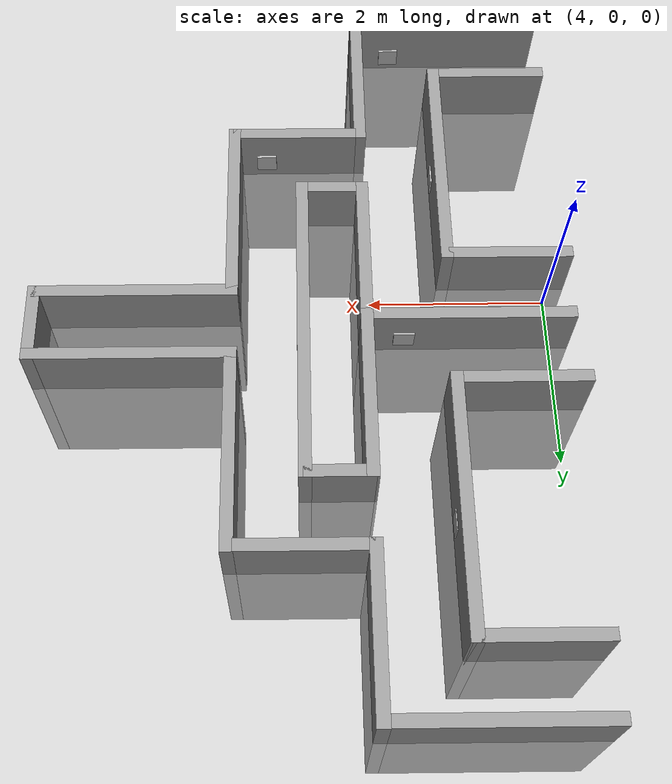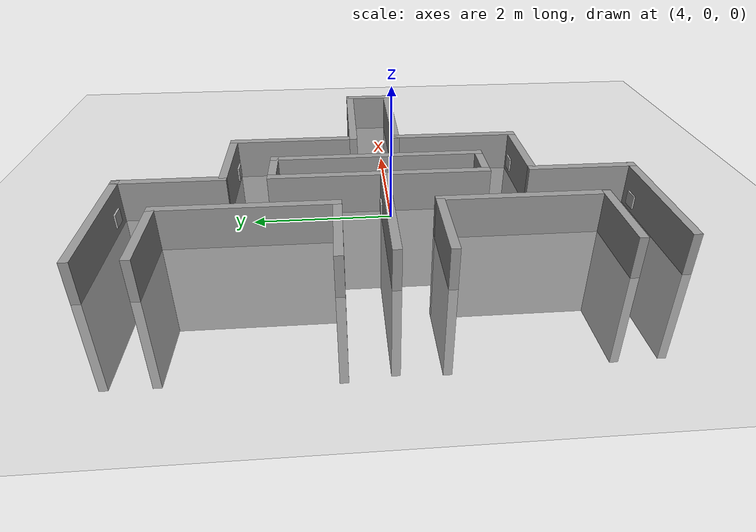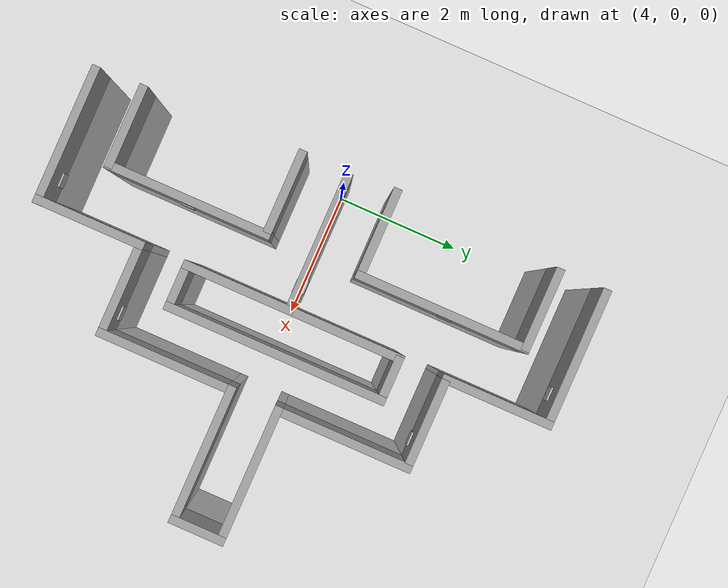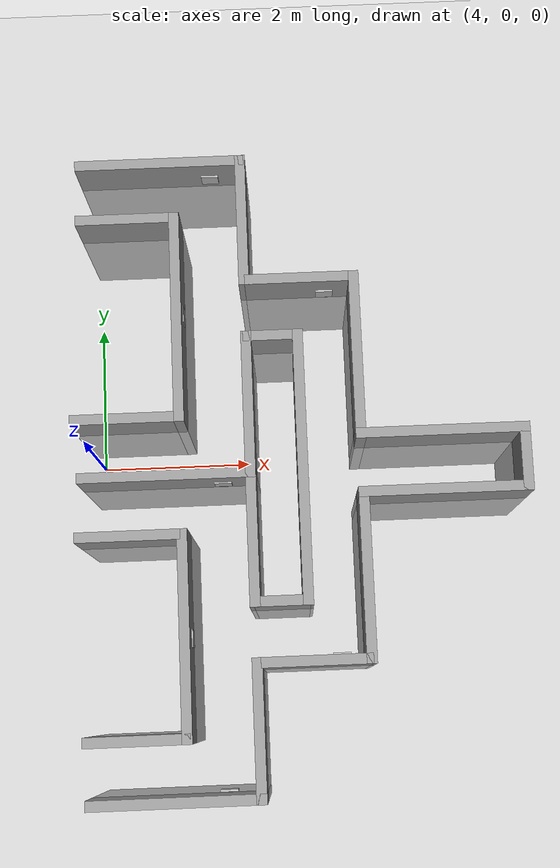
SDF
<sdf version="1.7">
 <world name="default">
  <physics name="default_physics" default="0" type="ode">
   <max_step_size>0.001</max_step_size>
   <real_time_factor>1</real_time_factor>
   <real_time_update_rate>1000</real_time_update_rate>
  </physics>
  <scene><ambient>0.7 0.7 0.7 1</ambient><background>0.7 0.7 0.7 1</background><shadows>1</shadows></scene>
  <light name="sun" type="directional">
   <pose>0 0 10 0 -0 0</pose>
   <diffuse>0.8 0.8 0.8 1</diffuse>
   <specular>0.1 0.1 0.1 1</specular>
   <attenuation>
    <range>1000</range>
    <constant>0.9</constant>
    <linear>0.01</linear>
    <quadratic>0.001</quadratic>
   </attenuation>
   <direction>-0.5 0.5 -1</direction>
   <spot><inner_angle>0</inner_angle><outer_angle>0</outer_angle><falloff>0</falloff></spot>
  </light>
  <model name="ground_plane">
   <static>1</static>
   <link name="link">
    <collision name="collision">
     <geometry><plane><normal>0 0 1</normal><size>100 100</size></plane></geometry>
     <surface>
      <contact><collide_bitmask>65535</collide_bitmask></contact>
      <friction><ode><mu>100</mu><mu2>50</mu2></ode></friction>
     </surface>
    </collision>
    <visual name="visual">
     <cast_shadows>0</cast_shadows>
     <geometry><plane><normal>0 0 1</normal><size>100 100</size></plane></geometry>
     <material>
      <script><uri>file://media/materials/scripts/gazebo.material</uri><name>Gazebo/Grey</name></script>
     </material>
    </visual>
   </link>
   <pose>0 0 -1 0 -0 0</pose>
  </model>
  <gravity>0 0 -9.8</gravity>
  <magnetic_field>6e-06 2.3e-05 -4.2e-05</magnetic_field>
  <atmosphere type="adiabatic"/>
  <spherical_coordinates>
   <surface_model>EARTH_WGS84</surface_model>
   <latitude_deg>0</latitude_deg>
   <longitude_deg>0</longitude_deg>
   <elevation>0</elevation>
   <heading_deg>0</heading_deg>
  </spherical_coordinates>
  <model name="tag_3">
   <static>1</static>
   <link name="link">
    <collision name="surface">
     <pose>0 0 1 0 -0 0</pose>
     <geometry><box><size>0.25 0.25 0.03</size></box></geometry>
     <surface><friction><ode><mu>0.6</mu><mu2>0.6</mu2></ode></friction></surface>
    </collision>
    <visual name="visual1">
     <pose>0 0 1 0 -0 0</pose>
     <geometry><box><size>0.25 0.25 0.03</size></box></geometry>
     <material>
      <script>
       <uri>model://miro_tag3/materials/scripts</uri>
       <uri>model://miro_tag3/materials/textures</uri>
       <name>miro_tag3/Diffuse</name>
      </script>
     </material>
    </visual>
   </link>
   <pose>5.55171 -5.48961 -0.762826 -1.56319 -1.5636 -0</pose>
  </model>
  <model name="tag_4">
   <static>1</static>
   <link name="link">
    <collision name="surface">
     <pose>0 0 1 0 -0 0</pose>
     <geometry><box><size>0.25 0.25 0.03</size></box></geometry>
     <surface><friction><ode><mu>0.6</mu><mu2>0.6</mu2></ode></friction></surface>
    </collision>
    <visual name="visual1">
     <pose>0 0 1 0 -0 0</pose>
     <geometry><box><size>0.25 0.25 0.03</size></box></geometry>
     <material>
      <script>
       <uri>model://miro_tag4/materials/scripts</uri>
       <uri>model://miro_tag4/materials/textures</uri>
       <name>miro_tag4/Diffuse</name>
      </script>
     </material>
    </visual>
   </link>
   <pose>5.5885 0.864964 -0.735792 -1.56815 -1.56181 -3.14159</pose>
  </model>
  <model name="tag_5">
   <static>1</static>
   <link name="link">
    <collision name="surface">
     <pose>0 0 1 0 -0 0</pose>
     <geometry><box><size>0.25 0.25 0.03</size></box></geometry>
     <surface><friction><ode><mu>0.6</mu><mu2>0.6</mu2></ode></friction></surface>
    </collision>
    <visual name="visual1">
     <pose>0 0 1 0 -0 0</pose>
     <geometry><box><size>0.25 0.25 0.03</size></box></geometry>
     <material>
      <script>
       <uri>model://miro_tag5/materials/scripts</uri>
       <uri>model://miro_tag5/materials/textures</uri>
       <name>miro_tag5/Diffuse</name>
      </script>
     </material>
    </visual>
   </link>
   <pose>5.54906 -0.966563 -0.730181 1.57542 -1.56424 3.14159</pose>
  </model>
  <model name="tag_6">
   <static>1</static>
   <link name="link">
    <collision name="surface">
     <pose>0 0 1 0 -0 0</pose>
     <geometry><box><size>0.25 0.25 0.03</size></box></geometry>
     <surface><friction><ode><mu>0.6</mu><mu2>0.6</mu2></ode></friction></surface>
    </collision>
    <visual name="visual1">
     <pose>0 0 1 0 -0 0</pose>
     <geometry><box><size>0.25 0.25 0.03</size></box></geometry>
     <material>
      <script>
       <uri>model://miro_tag6/materials/scripts</uri>
       <uri>model://miro_tag6/materials/textures</uri>
       <name>miro_tag6/Diffuse</name>
      </script>
     </material>
    </visual>
   </link>
   <pose>5.54805 5.54378 -0.721584 -1.58619 -1.55454 -3.14159</pose>
  </model>
  <model name="tag_8">
   <static>1</static>
   <link name="link">
    <collision name="surface">
     <pose>0 0 1 0 -0 0</pose>
     <geometry><box><size>0.25 0.25 0.03</size></box></geometry>
     <surface><friction><ode><mu>0.6</mu><mu2>0.6</mu2></ode></friction></surface>
    </collision>
    <visual name="visual1">
     <pose>0 0 1 0 -0 0</pose>
     <geometry><box><size>0.25 0.25 0.03</size></box></geometry>
     <material>
      <script>
       <uri>model://miro_tag/materials/scripts</uri>
       <uri>model://miro_tag/materials/textures</uri>
       <name>miro_tag/Diffuse</name>
      </script>
     </material>
    </visual>
   </link>
   <pose>6.08147 -2.35807 -0.744878 -1.16296 1.56828 1.97863</pose>
  </model>
  <model name="tag">
   <static>1</static>
   <link name="link">
    <collision name="surface">
     <pose>0 0 1 0 -0 0</pose>
     <geometry><box><size>0.25 0.25 0.03</size></box></geometry>
     <surface><friction><ode><mu>0.6</mu><mu2>0.6</mu2></ode></friction></surface>
    </collision>
    <visual name="visual1">
     <pose>0 0 1 0 -0 0</pose>
     <geometry><box><size>0.25 0.25 0.03</size></box></geometry>
     <material>
      <script>
       <uri>model://miro_tag/materials/scripts</uri>
       <uri>model://miro_tag/materials/textures</uri>
       <name>miro_tag/Diffuse</name>
      </script>
     </material>
    </visual>
   </link>
   <pose>6.07558 2.40703 -0.703912 -3.10652 1.55258 0.035081</pose>
  </model>
  <model name="tag_0">
   <static>1</static>
   <link name="link">
    <collision name="surface">
     <pose>0 0 1 0 -0 0</pose>
     <geometry><box><size>0.25 0.25 0.03</size></box></geometry>
     <surface><friction><ode><mu>0.6</mu><mu2>0.6</mu2></ode></friction></surface>
    </collision>
    <visual name="visual1">
     <pose>0 0 1 0 -0 0</pose>
     <geometry><box><size>0.25 0.25 0.03</size></box></geometry>
     <material>
      <script>
       <uri>model://miro_tag/materials/scripts</uri>
       <uri>model://miro_tag/materials/textures</uri>
       <name>miro_tag/Diffuse</name>
      </script>
     </material>
    </visual>
   </link>
   <pose>7.81471 0.010888 -0.759206 -0.527055 1.5524 2.61446</pose>
  </model>
  <model name="tag_1">
   <static>1</static>
   <link name="link">
    <collision name="surface">
     <pose>0 0 1 0 -0 0</pose>
     <geometry><box><size>0.25 0.25 0.03</size></box></geometry>
     <surface><friction><ode><mu>0.6</mu><mu2>0.6</mu2></ode></friction></surface>
    </collision>
    <visual name="visual1">
     <pose>0 0 1 0 -0 0</pose>
     <geometry><box><size>0.25 0.25 0.03</size></box></geometry>
     <material>
      <script>
       <uri>model://miro_tag1/materials/scripts</uri>
       <uri>model://miro_tag1/materials/textures</uri>
       <name>miro_tag1/Diffuse</name>
      </script>
     </material>
    </visual>
   </link>
   <pose>7.20562 -3.65935 -0.746311 0.004771 -1.57079 -1.57369</pose>
  </model>
  <model name="tag_2">
   <static>1</static>
   <link name="link">
    <collision name="surface">
     <pose>0 0 1 0 -0 0</pose>
     <geometry><box><size>0.25 0.25 0.03</size></box></geometry>
     <surface><friction><ode><mu>0.6</mu><mu2>0.6</mu2></ode></friction></surface>
    </collision>
    <visual name="visual1">
     <pose>0 0 1 0 -0 0</pose>
     <geometry><box><size>0.25 0.25 0.03</size></box></geometry>
     <material>
      <script>
       <uri>model://miro_tag2/materials/scripts</uri>
       <uri>model://miro_tag2/materials/textures</uri>
       <name>miro_tag2/Diffuse</name>
      </script>
     </material>
    </visual>
   </link>
   <pose>7.18133 3.68906 -0.741205 -1e-06 -1.56717 1.56483</pose>
  </model>
  <model name="maze2.0_0">
   <link name="Wall_101">
    <pose>0.75 0 0 0 -0 1.5708</pose>
    <visual name="Wall_101_Visual">
     <pose>0 0 1.25 0 -0 0</pose>
     <geometry><box><size>4 0.15 2.5</size></box></geometry>
     <material>
      <script><uri>file://media/materials/scripts/gazebo.material</uri><name>Gazebo/Grey</name></script>
      <ambient>1 1 1 1</ambient>
      <shader type="pixel"/>
     </material>
     <meta><layer>0</layer></meta>
    </visual>
    <collision name="Wall_101_Collision">
     <pose>0 0 1.25 0 -0 0</pose>
     <geometry><box><size>4 0.15 2.5</size></box></geometry>
     <surface>
      <friction>
       <ode><mu>1</mu><mu2>1</mu2><fdir1>0 0 0</fdir1><slip1>0</slip1><slip2>0</slip2></ode>
       <torsional>
        <coefficient>1</coefficient>
        <patch_radius>0</patch_radius>
        <surface_radius>0</surface_radius>
        <use_patch_radius>1</use_patch_radius>
        <ode><slip>0</slip></ode>
       </torsional>
      </friction>
      <bounce><restitution_coefficient>0</restitution_coefficient><threshold>1e+06</threshold></bounce>
      <contact>
       <collide_without_contact>0</collide_without_contact>
       <collide_without_contact_bitmask>1</collide_without_contact_bitmask>
       <collide_bitmask>1</collide_bitmask>
       <ode>
        <soft_cfm>0</soft_cfm>
        <soft_erp>0.2</soft_erp>
        <kp>1e+13</kp>
        <kd>1</kd>
        <max_vel>0.01</max_vel>
        <min_depth>0</min_depth>
       </ode>
       <bullet>
        <split_impulse>1</split_impulse>
        <split_impulse_penetration_threshold>-0.01</split_impulse_penetration_threshold>
        <soft_cfm>0</soft_cfm>
        <soft_erp>0.2</soft_erp>
        <kp>1e+13</kp>
        <kd>1</kd>
       </bullet>
      </contact>
     </surface>
    </collision>
   </link>
   <link name="Wall_105">
    <pose>0.774711 2.77479 0 0 -0 0</pose>
    <inertial>
     <inertia><ixx>0</ixx><ixy>0</ixy><ixz>0</ixz><iyy>0</iyy><iyz>0</iyz><izz>0</izz></inertia>
     <mass>0</mass>
    </inertial>
    <visual name="Wall_105_Visual">
     <pose>0 0 1.25 0 -0 0</pose>
     <geometry><box><size>1.53068 0.15 2.5</size></box></geometry>
     <material>
      <script><uri>file://media/materials/scripts/gazebo.material</uri><name>Gazebo/Grey</name></script>
      <ambient>1 1 1 1</ambient>
      <shader type="pixel"/>
     </material>
     <meta><layer>0</layer></meta>
    </visual>
    <collision name="Wall_105_Collision">
     <pose>0 0 1.25 0 -0 0</pose>
     <geometry><box><size>1.53068 0.15 2.5</size></box></geometry>
     <surface>
      <friction>
       <ode><mu>1</mu><mu2>1</mu2><fdir1>0 0 0</fdir1><slip1>0</slip1><slip2>0</slip2></ode>
       <torsional>
        <coefficient>1</coefficient>
        <patch_radius>0</patch_radius>
        <surface_radius>0</surface_radius>
        <use_patch_radius>1</use_patch_radius>
        <ode><slip>0</slip></ode>
       </torsional>
      </friction>
      <bounce><restitution_coefficient>0</restitution_coefficient><threshold>1e+06</threshold></bounce>
      <contact>
       <collide_without_contact>0</collide_without_contact>
       <collide_without_contact_bitmask>1</collide_without_contact_bitmask>
       <collide_bitmask>1</collide_bitmask>
       <ode>
        <soft_cfm>0</soft_cfm>
        <soft_erp>0.2</soft_erp>
        <kp>1e+13</kp>
        <kd>1</kd>
        <max_vel>0.01</max_vel>
        <min_depth>0</min_depth>
       </ode>
       <bullet>
        <split_impulse>1</split_impulse>
        <split_impulse_penetration_threshold>-0.01</split_impulse_penetration_threshold>
        <soft_cfm>0</soft_cfm>
        <soft_erp>0.2</soft_erp>
        <kp>1e+13</kp>
        <kd>1</kd>
       </bullet>
      </contact>
     </surface>
    </collision>
   </link>
   <link name="Wall_108">
    <pose>0 -3.7 0 0 0 -1.5708</pose>
    <inertial>
     <mass>1</mass>
     <inertia><ixx>1</ixx><ixy>0</ixy><ixz>0</ixz><iyy>1</iyy><iyz>0</iyz><izz>1</izz></inertia>
    </inertial>
    <visual name="Wall_108_Visual">
     <pose>0 0 1.25 0 -0 0</pose>
     <geometry><box><size>2 0.15 2.5</size></box></geometry>
     <material>
      <script><uri>file://media/materials/scripts/gazebo.material</uri><name>Gazebo/Grey</name></script>
      <ambient>1 1 1 1</ambient>
      <shader type="pixel"><normal_map>__default__</normal_map></shader>
      <diffuse>0.7 0.7 0.7 1</diffuse>
      <specular>0.01 0.01 0.01 1</specular>
      <emissive>0 0 0 1</emissive>
     </material>
     <meta><layer>0</layer></meta>
    </visual>
    <collision name="Wall_108_Collision">
     <pose>0 0 1.25 0 -0 0</pose>
     <geometry><box><size>2 0.15 2.5</size></box></geometry>
     <surface>
      <friction>
       <ode><mu>1</mu><mu2>1</mu2><fdir1>0 0 0</fdir1><slip1>0</slip1><slip2>0</slip2></ode>
       <torsional>
        <coefficient>1</coefficient>
        <patch_radius>0</patch_radius>
        <surface_radius>0</surface_radius>
        <use_patch_radius>1</use_patch_radius>
        <ode><slip>0</slip></ode>
       </torsional>
      </friction>
      <bounce><restitution_coefficient>0</restitution_coefficient><threshold>1e+06</threshold></bounce>
      <contact>
       <collide_without_contact>0</collide_without_contact>
       <collide_without_contact_bitmask>1</collide_without_contact_bitmask>
       <collide_bitmask>1</collide_bitmask>
       <ode>
        <soft_cfm>0</soft_cfm>
        <soft_erp>0.2</soft_erp>
        <kp>1e+13</kp>
        <kd>1</kd>
        <max_vel>0.01</max_vel>
        <min_depth>0</min_depth>
       </ode>
       <bullet>
        <split_impulse>1</split_impulse>
        <split_impulse_penetration_threshold>-0.01</split_impulse_penetration_threshold>
        <soft_cfm>0</soft_cfm>
        <soft_erp>0.2</soft_erp>
        <kp>1e+13</kp>
        <kd>1</kd>
       </bullet>
      </contact>
     </surface>
    </collision>
   </link>
   <link name="Wall_109">
    <pose>-1.17194 -4.625 0 0 -0 3.14159</pose>
    <inertial>
     <mass>1</mass>
     <inertia><ixx>1</ixx><ixy>0</ixy><ixz>0</ixz><iyy>1</iyy><iyz>0</iyz><izz>1</izz></inertia>
    </inertial>
    <visual name="Wall_109_Visual">
     <pose>0 0 1.25 0 -0 0</pose>
     <geometry><box><size>2.5 0.15 2.5</size></box></geometry>
     <material>
      <script><uri>file://media/materials/scripts/gazebo.material</uri><name>Gazebo/Grey</name></script>
      <ambient>1 1 1 1</ambient>
      <shader type="pixel"><normal_map>__default__</normal_map></shader>
      <diffuse>0.7 0.7 0.7 1</diffuse>
      <specular>0.01 0.01 0.01 1</specular>
      <emissive>0 0 0 1</emissive>
     </material>
     <meta><layer>0</layer></meta>
    </visual>
    <collision name="Wall_109_Collision">
     <pose>0 0 1.25 0 -0 0</pose>
     <geometry><box><size>2.5 0.15 2.5</size></box></geometry>
     <surface>
      <friction>
       <ode><mu>1</mu><mu2>1</mu2><fdir1>0 0 0</fdir1><slip1>0</slip1><slip2>0</slip2></ode>
       <torsional>
        <coefficient>1</coefficient>
        <patch_radius>0</patch_radius>
        <surface_radius>0</surface_radius>
        <use_patch_radius>1</use_patch_radius>
        <ode><slip>0</slip></ode>
       </torsional>
      </friction>
      <bounce><restitution_coefficient>0</restitution_coefficient><threshold>1e+06</threshold></bounce>
      <contact>
       <collide_without_contact>0</collide_without_contact>
       <collide_without_contact_bitmask>1</collide_without_contact_bitmask>
       <collide_bitmask>1</collide_bitmask>
       <ode>
        <soft_cfm>0</soft_cfm>
        <soft_erp>0.2</soft_erp>
        <kp>1e+13</kp>
        <kd>1</kd>
        <max_vel>0.01</max_vel>
        <min_depth>0</min_depth>
       </ode>
       <bullet>
        <split_impulse>1</split_impulse>
        <split_impulse_penetration_threshold>-0.01</split_impulse_penetration_threshold>
        <soft_cfm>0</soft_cfm>
        <soft_erp>0.2</soft_erp>
        <kp>1e+13</kp>
        <kd>1</kd>
       </bullet>
      </contact>
     </surface>
    </collision>
   </link>
   <link name="Wall_111">
    <pose>0 3.7011 0 0 -0 1.5708</pose>
    <inertial>
     <mass>1</mass>
     <inertia><ixx>1</ixx><ixy>0</ixy><ixz>0</ixz><iyy>1</iyy><iyz>0</iyz><izz>1</izz></inertia>
    </inertial>
    <visual name="Wall_111_Visual">
     <pose>0 0 1.25 0 -0 0</pose>
     <geometry><box><size>2 0.15 2.5</size></box></geometry>
     <material>
      <script><uri>file://media/materials/scripts/gazebo.material</uri><name>Gazebo/Grey</name></script>
      <ambient>1 1 1 1</ambient>
      <shader type="pixel"><normal_map>__default__</normal_map></shader>
      <diffuse>0.7 0.7 0.7 1</diffuse>
      <specular>0.01 0.01 0.01 1</specular>
      <emissive>0 0 0 1</emissive>
     </material>
     <meta><layer>0</layer></meta>
    </visual>
    <collision name="Wall_111_Collision">
     <pose>0 0 1.25 0 -0 0</pose>
     <geometry><box><size>2 0.15 2.5</size></box></geometry>
     <surface>
      <friction>
       <ode><mu>1</mu><mu2>1</mu2><fdir1>0 0 0</fdir1><slip1>0</slip1><slip2>0</slip2></ode>
       <torsional>
        <coefficient>1</coefficient>
        <patch_radius>0</patch_radius>
        <surface_radius>0</surface_radius>
        <use_patch_radius>1</use_patch_radius>
        <ode><slip>0</slip></ode>
       </torsional>
      </friction>
      <bounce><restitution_coefficient>0</restitution_coefficient><threshold>1e+06</threshold></bounce>
      <contact>
       <collide_without_contact>0</collide_without_contact>
       <collide_without_contact_bitmask>1</collide_without_contact_bitmask>
       <collide_bitmask>1</collide_bitmask>
       <ode>
        <soft_cfm>0</soft_cfm>
        <soft_erp>0.2</soft_erp>
        <kp>1e+13</kp>
        <kd>1</kd>
        <max_vel>0.01</max_vel>
        <min_depth>0</min_depth>
       </ode>
       <bullet>
        <split_impulse>1</split_impulse>
        <split_impulse_penetration_threshold>-0.01</split_impulse_penetration_threshold>
        <soft_cfm>0</soft_cfm>
        <soft_erp>0.2</soft_erp>
        <kp>1e+13</kp>
        <kd>1</kd>
       </bullet>
      </contact>
     </surface>
    </collision>
   </link>
   <link name="Wall_112">
    <pose>-1.1964 4.625 0 0 -0 3.14159</pose>
    <visual name="Wall_112_Visual">
     <pose>0 0 1.25 0 -0 0</pose>
     <geometry><box><size>2.5 0.15 2.5</size></box></geometry>
     <material>
      <script><uri>file://media/materials/scripts/gazebo.material</uri><name>Gazebo/Grey</name></script>
      <ambient>1 1 1 1</ambient>
      <shader type="pixel"/>
     </material>
     <meta><layer>0</layer></meta>
    </visual>
    <collision name="Wall_112_Collision">
     <pose>0 0 1.25 0 -0 0</pose>
     <geometry><box><size>2.5 0.15 2.5</size></box></geometry>
     <surface>
      <friction>
       <ode><mu>1</mu><mu2>1</mu2><fdir1>0 0 0</fdir1><slip1>0</slip1><slip2>0</slip2></ode>
       <torsional>
        <coefficient>1</coefficient>
        <patch_radius>0</patch_radius>
        <surface_radius>0</surface_radius>
        <use_patch_radius>1</use_patch_radius>
        <ode><slip>0</slip></ode>
       </torsional>
      </friction>
      <bounce><restitution_coefficient>0</restitution_coefficient><threshold>1e+06</threshold></bounce>
      <contact>
       <collide_without_contact>0</collide_without_contact>
       <collide_without_contact_bitmask>1</collide_without_contact_bitmask>
       <collide_bitmask>1</collide_bitmask>
       <ode>
        <soft_cfm>0</soft_cfm>
        <soft_erp>0.2</soft_erp>
        <kp>1e+13</kp>
        <kd>1</kd>
        <max_vel>0.01</max_vel>
        <min_depth>0</min_depth>
       </ode>
       <bullet>
        <split_impulse>1</split_impulse>
        <split_impulse_penetration_threshold>-0.01</split_impulse_penetration_threshold>
        <soft_cfm>0</soft_cfm>
        <soft_erp>0.2</soft_erp>
        <kp>1e+13</kp>
        <kd>1</kd>
       </bullet>
      </contact>
     </surface>
    </collision>
   </link>
   <link name="Wall_115">
    <pose>-1.7 -3.775 0 0 -0 0</pose>
    <inertial>
     <mass>1</mass>
     <inertia><ixx>1</ixx><ixy>0</ixy><ixz>0</ixz><iyy>1</iyy><iyz>0</iyz><izz>1</izz></inertia>
    </inertial>
    <visual name="Wall_115_Visual">
     <pose>0 0 1.25 0 -0 0</pose>
     <geometry><box><size>1.5 0.15 2.5</size></box></geometry>
     <material>
      <script><uri>file://media/materials/scripts/gazebo.material</uri><name>Gazebo/Grey</name></script>
      <ambient>1 1 1 1</ambient>
      <shader type="pixel"><normal_map>__default__</normal_map></shader>
      <diffuse>0.7 0.7 0.7 1</diffuse>
      <specular>0.01 0.01 0.01 1</specular>
      <emissive>0 0 0 1</emissive>
     </material>
     <meta><layer>0</layer></meta>
    </visual>
    <collision name="Wall_115_Collision">
     <pose>0 0 1.25 0 -0 0</pose>
     <geometry><box><size>1.5 0.15 2.5</size></box></geometry>
     <surface>
      <friction>
       <ode><mu>1</mu><mu2>1</mu2><fdir1>0 0 0</fdir1><slip1>0</slip1><slip2>0</slip2></ode>
       <torsional>
        <coefficient>1</coefficient>
        <patch_radius>0</patch_radius>
        <surface_radius>0</surface_radius>
        <use_patch_radius>1</use_patch_radius>
        <ode><slip>0</slip></ode>
       </torsional>
      </friction>
      <bounce><restitution_coefficient>0</restitution_coefficient><threshold>1e+06</threshold></bounce>
      <contact>
       <collide_without_contact>0</collide_without_contact>
       <collide_without_contact_bitmask>1</collide_without_contact_bitmask>
       <collide_bitmask>1</collide_bitmask>
       <ode>
        <soft_cfm>0</soft_cfm>
        <soft_erp>0.2</soft_erp>
        <kp>1e+13</kp>
        <kd>1</kd>
        <max_vel>0.01</max_vel>
        <min_depth>0</min_depth>
       </ode>
       <bullet>
        <split_impulse>1</split_impulse>
        <split_impulse_penetration_threshold>-0.01</split_impulse_penetration_threshold>
        <soft_cfm>0</soft_cfm>
        <soft_erp>0.2</soft_erp>
        <kp>1e+13</kp>
        <kd>1</kd>
       </bullet>
      </contact>
     </surface>
    </collision>
   </link>
   <link name="Wall_119">
    <pose>-1.77392 -0.925 0 0 -0 0</pose>
    <visual name="Wall_119_Visual">
     <pose>0 0 1.25 0 -0 0</pose>
     <geometry><box><size>1.5 0.15 2.5</size></box></geometry>
     <material>
      <script><uri>file://media/materials/scripts/gazebo.material</uri><name>Gazebo/Grey</name></script>
      <ambient>1 1 1 1</ambient>
      <shader type="pixel"/>
     </material>
     <meta><layer>0</layer></meta>
    </visual>
    <collision name="Wall_119_Collision">
     <pose>0 0 1.25 0 -0 0</pose>
     <geometry><box><size>1.5 0.15 2.5</size></box></geometry>
     <surface>
      <friction>
       <ode><mu>1</mu><mu2>1</mu2><fdir1>0 0 0</fdir1><slip1>0</slip1><slip2>0</slip2></ode>
       <torsional>
        <coefficient>1</coefficient>
        <patch_radius>0</patch_radius>
        <surface_radius>0</surface_radius>
        <use_patch_radius>1</use_patch_radius>
        <ode><slip>0</slip></ode>
       </torsional>
      </friction>
      <bounce><restitution_coefficient>0</restitution_coefficient><threshold>1e+06</threshold></bounce>
      <contact>
       <collide_without_contact>0</collide_without_contact>
       <collide_without_contact_bitmask>1</collide_without_contact_bitmask>
       <collide_bitmask>1</collide_bitmask>
       <ode>
        <soft_cfm>0</soft_cfm>
        <soft_erp>0.2</soft_erp>
        <kp>1e+13</kp>
        <kd>1</kd>
        <max_vel>0.01</max_vel>
        <min_depth>0</min_depth>
       </ode>
       <bullet>
        <split_impulse>1</split_impulse>
        <split_impulse_penetration_threshold>-0.01</split_impulse_penetration_threshold>
        <soft_cfm>0</soft_cfm>
        <soft_erp>0.2</soft_erp>
        <kp>1e+13</kp>
        <kd>1</kd>
       </bullet>
      </contact>
     </surface>
    </collision>
   </link>
   <link name="Wall_120">
    <pose>-1 -2.35 0 0 0 -1.5708</pose>
    <inertial>
     <mass>1</mass>
     <inertia><ixx>1</ixx><ixy>0</ixy><ixz>0</ixz><iyy>1</iyy><iyz>0</iyz><izz>1</izz></inertia>
    </inertial>
    <visual name="Wall_120_Visual">
     <pose>0 0 1.25 0 -0 0</pose>
     <geometry><box><size>3 0.15 2.5</size></box></geometry>
     <material>
      <script><uri>file://media/materials/scripts/gazebo.material</uri><name>Gazebo/Grey</name></script>
      <ambient>1 1 1 1</ambient>
      <shader type="pixel"><normal_map>__default__</normal_map></shader>
      <diffuse>0.7 0.7 0.7 1</diffuse>
      <specular>0.01 0.01 0.01 1</specular>
      <emissive>0 0 0 1</emissive>
     </material>
     <meta><layer>0</layer></meta>
    </visual>
    <collision name="Wall_120_Collision">
     <pose>0 0 1.25 0 -0 0</pose>
     <geometry><box><size>3 0.15 2.5</size></box></geometry>
     <surface>
      <friction>
       <ode><mu>1</mu><mu2>1</mu2><fdir1>0 0 0</fdir1><slip1>0</slip1><slip2>0</slip2></ode>
       <torsional>
        <coefficient>1</coefficient>
        <patch_radius>0</patch_radius>
        <surface_radius>0</surface_radius>
        <use_patch_radius>1</use_patch_radius>
        <ode><slip>0</slip></ode>
       </torsional>
      </friction>
      <bounce><restitution_coefficient>0</restitution_coefficient><threshold>1e+06</threshold></bounce>
      <contact>
       <collide_without_contact>0</collide_without_contact>
       <collide_without_contact_bitmask>1</collide_without_contact_bitmask>
       <collide_bitmask>1</collide_bitmask>
       <ode>
        <soft_cfm>0</soft_cfm>
        <soft_erp>0.2</soft_erp>
        <kp>1e+13</kp>
        <kd>1</kd>
        <max_vel>0.01</max_vel>
        <min_depth>0</min_depth>
       </ode>
       <bullet>
        <split_impulse>1</split_impulse>
        <split_impulse_penetration_threshold>-0.01</split_impulse_penetration_threshold>
        <soft_cfm>0</soft_cfm>
        <soft_erp>0.2</soft_erp>
        <kp>1e+13</kp>
        <kd>1</kd>
       </bullet>
      </contact>
     </surface>
    </collision>
   </link>
   <link name="Wall_123">
    <pose>-1.82436 0.775 0 0 -0 0</pose>
    <visual name="Wall_123_Visual">
     <pose>0 0 1.25 0 -0 0</pose>
     <geometry><box><size>1.5 0.15 2.5</size></box></geometry>
     <material>
      <script><uri>file://media/materials/scripts/gazebo.material</uri><name>Gazebo/Grey</name></script>
      <ambient>1 1 1 1</ambient>
      <shader type="pixel"/>
     </material>
     <meta><layer>0</layer></meta>
    </visual>
    <collision name="Wall_123_Collision">
     <pose>0 0 1.25 0 -0 0</pose>
     <geometry><box><size>1.5 0.15 2.5</size></box></geometry>
     <surface>
      <friction>
       <ode><mu>1</mu><mu2>1</mu2><fdir1>0 0 0</fdir1><slip1>0</slip1><slip2>0</slip2></ode>
       <torsional>
        <coefficient>1</coefficient>
        <patch_radius>0</patch_radius>
        <surface_radius>0</surface_radius>
        <use_patch_radius>1</use_patch_radius>
        <ode><slip>0</slip></ode>
       </torsional>
      </friction>
      <bounce><restitution_coefficient>0</restitution_coefficient><threshold>1e+06</threshold></bounce>
      <contact>
       <collide_without_contact>0</collide_without_contact>
       <collide_without_contact_bitmask>1</collide_without_contact_bitmask>
       <collide_bitmask>1</collide_bitmask>
       <ode>
        <soft_cfm>0</soft_cfm>
        <soft_erp>0.2</soft_erp>
        <kp>1e+13</kp>
        <kd>1</kd>
        <max_vel>0.01</max_vel>
        <min_depth>0</min_depth>
       </ode>
       <bullet>
        <split_impulse>1</split_impulse>
        <split_impulse_penetration_threshold>-0.01</split_impulse_penetration_threshold>
        <soft_cfm>0</soft_cfm>
        <soft_erp>0.2</soft_erp>
        <kp>1e+13</kp>
        <kd>1</kd>
       </bullet>
      </contact>
     </surface>
    </collision>
   </link>
   <link name="Wall_126">
    <pose>-1.7 3.775 0 0 -0 0</pose>
    <inertial>
     <mass>1</mass>
     <inertia><ixx>1</ixx><ixy>0</ixy><ixz>0</ixz><iyy>1</iyy><iyz>0</iyz><izz>1</izz></inertia>
    </inertial>
    <visual name="Wall_126_Visual">
     <pose>0 0 1.25 0 -0 0</pose>
     <geometry><box><size>1.5 0.15 2.5</size></box></geometry>
     <material>
      <script><uri>file://media/materials/scripts/gazebo.material</uri><name>Gazebo/Grey</name></script>
      <ambient>1 1 1 1</ambient>
      <shader type="pixel"><normal_map>__default__</normal_map></shader>
      <diffuse>0.7 0.7 0.7 1</diffuse>
      <specular>0.01 0.01 0.01 1</specular>
      <emissive>0 0 0 1</emissive>
     </material>
     <meta><layer>0</layer></meta>
    </visual>
    <collision name="Wall_126_Collision">
     <pose>0 0 1.25 0 -0 0</pose>
     <geometry><box><size>1.5 0.15 2.5</size></box></geometry>
     <surface>
      <friction>
       <ode><mu>1</mu><mu2>1</mu2><fdir1>0 0 0</fdir1><slip1>0</slip1><slip2>0</slip2></ode>
       <torsional>
        <coefficient>1</coefficient>
        <patch_radius>0</patch_radius>
        <surface_radius>0</surface_radius>
        <use_patch_radius>1</use_patch_radius>
        <ode><slip>0</slip></ode>
       </torsional>
      </friction>
      <bounce><restitution_coefficient>0</restitution_coefficient><threshold>1e+06</threshold></bounce>
      <contact>
       <collide_without_contact>0</collide_without_contact>
       <collide_without_contact_bitmask>1</collide_without_contact_bitmask>
       <collide_bitmask>1</collide_bitmask>
       <ode>
        <soft_cfm>0</soft_cfm>
        <soft_erp>0.2</soft_erp>
        <kp>1e+13</kp>
        <kd>1</kd>
        <max_vel>0.01</max_vel>
        <min_depth>0</min_depth>
       </ode>
       <bullet>
        <split_impulse>1</split_impulse>
        <split_impulse_penetration_threshold>-0.01</split_impulse_penetration_threshold>
        <soft_cfm>0</soft_cfm>
        <soft_erp>0.2</soft_erp>
        <kp>1e+13</kp>
        <kd>1</kd>
       </bullet>
      </contact>
     </surface>
    </collision>
   </link>
   <link name="Wall_127">
    <pose>-1 2.275 0 0 0 -1.5708</pose>
    <inertial>
     <mass>1</mass>
     <pose>-0.05 0 0 0 -0 0</pose>
     <inertia><ixx>1</ixx><ixy>0</ixy><ixz>0</ixz><iyy>1</iyy><iyz>0</iyz><izz>1</izz></inertia>
    </inertial>
    <visual name="Wall_127_Visual">
     <pose>0 0 1.25 0 -0 0</pose>
     <geometry><box><size>3.15 0.15 2.5</size></box></geometry>
     <material>
      <script><uri>file://media/materials/scripts/gazebo.material</uri><name>Gazebo/Grey</name></script>
      <ambient>1 1 1 1</ambient>
      <shader type="pixel"><normal_map>__default__</normal_map></shader>
      <diffuse>0.7 0.7 0.7 1</diffuse>
      <specular>0.01 0.01 0.01 1</specular>
      <emissive>0 0 0 1</emissive>
     </material>
     <meta><layer>0</layer></meta>
    </visual>
    <collision name="Wall_127_Collision">
     <pose>0 0 1.25 0 -0 0</pose>
     <geometry><box><size>3.15 0.15 2.5</size></box></geometry>
     <surface>
      <friction>
       <ode><mu>1</mu><mu2>1</mu2><fdir1>0 0 0</fdir1><slip1>0</slip1><slip2>0</slip2></ode>
       <torsional>
        <coefficient>1</coefficient>
        <patch_radius>0</patch_radius>
        <surface_radius>0</surface_radius>
        <use_patch_radius>1</use_patch_radius>
        <ode><slip>0</slip></ode>
       </torsional>
      </friction>
      <bounce><restitution_coefficient>0</restitution_coefficient><threshold>1e+06</threshold></bounce>
      <contact>
       <collide_without_contact>0</collide_without_contact>
       <collide_without_contact_bitmask>1</collide_without_contact_bitmask>
       <collide_bitmask>1</collide_bitmask>
       <ode>
        <soft_cfm>0</soft_cfm>
        <soft_erp>0.2</soft_erp>
        <kp>1e+13</kp>
        <kd>1</kd>
        <max_vel>0.01</max_vel>
        <min_depth>0</min_depth>
       </ode>
       <bullet>
        <split_impulse>1</split_impulse>
        <split_impulse_penetration_threshold>-0.01</split_impulse_penetration_threshold>
        <soft_cfm>0</soft_cfm>
        <soft_erp>0.2</soft_erp>
        <kp>1e+13</kp>
        <kd>1</kd>
       </bullet>
      </contact>
     </surface>
    </collision>
   </link>
   <link name="Wall_62">
    <pose>3.95 0 0 0 0 -1.5708</pose>
    <visual name="Wall_62_Visual">
     <pose>0 0 1.25 0 -0 0</pose>
     <geometry><box><size>1 0.15 2.5</size></box></geometry>
     <material>
      <script><uri>file://media/materials/scripts/gazebo.material</uri><name>Gazebo/Grey</name></script>
      <ambient>1 1 1 1</ambient>
      <shader type="pixel"/>
     </material>
     <meta><layer>0</layer></meta>
    </visual>
    <collision name="Wall_62_Collision">
     <pose>0 0 1.25 0 -0 0</pose>
     <geometry><box><size>1 0.15 2.5</size></box></geometry>
     <surface>
      <friction>
       <ode><mu>1</mu><mu2>1</mu2><fdir1>0 0 0</fdir1><slip1>0</slip1><slip2>0</slip2></ode>
       <torsional>
        <coefficient>1</coefficient>
        <patch_radius>0</patch_radius>
        <surface_radius>0</surface_radius>
        <use_patch_radius>1</use_patch_radius>
        <ode><slip>0</slip></ode>
       </torsional>
      </friction>
      <bounce><restitution_coefficient>0</restitution_coefficient><threshold>1e+06</threshold></bounce>
      <contact>
       <collide_without_contact>0</collide_without_contact>
       <collide_without_contact_bitmask>1</collide_without_contact_bitmask>
       <collide_bitmask>1</collide_bitmask>
       <ode>
        <soft_cfm>0</soft_cfm>
        <soft_erp>0.2</soft_erp>
        <kp>1e+13</kp>
        <kd>1</kd>
        <max_vel>0.01</max_vel>
        <min_depth>0</min_depth>
       </ode>
       <bullet>
        <split_impulse>1</split_impulse>
        <split_impulse_penetration_threshold>-0.01</split_impulse_penetration_threshold>
        <soft_cfm>0</soft_cfm>
        <soft_erp>0.2</soft_erp>
        <kp>1e+13</kp>
        <kd>1</kd>
       </bullet>
      </contact>
     </surface>
    </collision>
   </link>
   <link name="Wall_64">
    <pose>2.775 0.425 0 0 -0 3.14159</pose>
    <visual name="Wall_64_Visual">
     <pose>0 0 1.25 0 -0 0</pose>
     <geometry><box><size>2.5 0.15 2.5</size></box></geometry>
     <material>
      <script><uri>file://media/materials/scripts/gazebo.material</uri><name>Gazebo/Grey</name></script>
      <ambient>1 1 1 1</ambient>
      <shader type="pixel"/>
     </material>
     <meta><layer>0</layer></meta>
    </visual>
    <collision name="Wall_64_Collision">
     <pose>0 0 1.25 0 -0 0</pose>
     <geometry><box><size>2.5 0.15 2.5</size></box></geometry>
     <surface>
      <friction>
       <ode><mu>1</mu><mu2>1</mu2><fdir1>0 0 0</fdir1><slip1>0</slip1><slip2>0</slip2></ode>
       <torsional>
        <coefficient>1</coefficient>
        <patch_radius>0</patch_radius>
        <surface_radius>0</surface_radius>
        <use_patch_radius>1</use_patch_radius>
        <ode><slip>0</slip></ode>
       </torsional>
      </friction>
      <bounce><restitution_coefficient>0</restitution_coefficient><threshold>1e+06</threshold></bounce>
      <contact>
       <collide_without_contact>0</collide_without_contact>
       <collide_without_contact_bitmask>1</collide_without_contact_bitmask>
       <collide_bitmask>1</collide_bitmask>
       <ode>
        <soft_cfm>0</soft_cfm>
        <soft_erp>0.2</soft_erp>
        <kp>1e+13</kp>
        <kd>1</kd>
        <max_vel>0.01</max_vel>
        <min_depth>0</min_depth>
       </ode>
       <bullet>
        <split_impulse>1</split_impulse>
        <split_impulse_penetration_threshold>-0.01</split_impulse_penetration_threshold>
        <soft_cfm>0</soft_cfm>
        <soft_erp>0.2</soft_erp>
        <kp>1e+13</kp>
        <kd>1</kd>
       </bullet>
      </contact>
     </surface>
    </collision>
   </link>
   <link name="Wall_66">
    <pose>2.775 -0.425 0 0 -0 3.14159</pose>
    <visual name="Wall_66_Visual">
     <pose>0 0 1.25 0 -0 0</pose>
     <geometry><box><size>2.5 0.15 2.5</size></box></geometry>
     <material>
      <script><uri>file://media/materials/scripts/gazebo.material</uri><name>Gazebo/Grey</name></script>
      <ambient>1 1 1 1</ambient>
      <shader type="pixel"/>
     </material>
     <meta><layer>0</layer></meta>
    </visual>
    <collision name="Wall_66_Collision">
     <pose>0 0 1.25 0 -0 0</pose>
     <geometry><box><size>2.5 0.15 2.5</size></box></geometry>
     <surface>
      <friction>
       <ode><mu>1</mu><mu2>1</mu2><fdir1>0 0 0</fdir1><slip1>0</slip1><slip2>0</slip2></ode>
       <torsional>
        <coefficient>1</coefficient>
        <patch_radius>0</patch_radius>
        <surface_radius>0</surface_radius>
        <use_patch_radius>1</use_patch_radius>
        <ode><slip>0</slip></ode>
       </torsional>
      </friction>
      <bounce><restitution_coefficient>0</restitution_coefficient><threshold>1e+06</threshold></bounce>
      <contact>
       <collide_without_contact>0</collide_without_contact>
       <collide_without_contact_bitmask>1</collide_without_contact_bitmask>
       <collide_bitmask>1</collide_bitmask>
       <ode>
        <soft_cfm>0</soft_cfm>
        <soft_erp>0.2</soft_erp>
        <kp>1e+13</kp>
        <kd>1</kd>
        <max_vel>0.01</max_vel>
        <min_depth>0</min_depth>
       </ode>
       <bullet>
        <split_impulse>1</split_impulse>
        <split_impulse_penetration_threshold>-0.01</split_impulse_penetration_threshold>
        <soft_cfm>0</soft_cfm>
        <soft_erp>0.2</soft_erp>
        <kp>1e+13</kp>
        <kd>1</kd>
       </bullet>
      </contact>
     </surface>
    </collision>
   </link>
   <link name="Wall_68">
    <pose>1.6 -1.6 0 0 0 -1.5708</pose>
    <visual name="Wall_68_Visual">
     <pose>0 0 1.25 0 -0 0</pose>
     <geometry><box><size>2.5 0.15 2.5</size></box></geometry>
     <material>
      <script><uri>file://media/materials/scripts/gazebo.material</uri><name>Gazebo/Grey</name></script>
      <ambient>1 1 1 1</ambient>
      <shader type="pixel"/>
     </material>
     <meta><layer>0</layer></meta>
    </visual>
    <collision name="Wall_68_Collision">
     <pose>0 0 1.25 0 -0 0</pose>
     <geometry><box><size>2.5 0.15 2.5</size></box></geometry>
     <surface>
      <friction>
       <ode><mu>1</mu><mu2>1</mu2><fdir1>0 0 0</fdir1><slip1>0</slip1><slip2>0</slip2></ode>
       <torsional>
        <coefficient>1</coefficient>
        <patch_radius>0</patch_radius>
        <surface_radius>0</surface_radius>
        <use_patch_radius>1</use_patch_radius>
        <ode><slip>0</slip></ode>
       </torsional>
      </friction>
      <bounce><restitution_coefficient>0</restitution_coefficient><threshold>1e+06</threshold></bounce>
      <contact>
       <collide_without_contact>0</collide_without_contact>
       <collide_without_contact_bitmask>1</collide_without_contact_bitmask>
       <collide_bitmask>1</collide_bitmask>
       <ode>
        <soft_cfm>0</soft_cfm>
        <soft_erp>0.2</soft_erp>
        <kp>1e+13</kp>
        <kd>1</kd>
        <max_vel>0.01</max_vel>
        <min_depth>0</min_depth>
       </ode>
       <bullet>
        <split_impulse>1</split_impulse>
        <split_impulse_penetration_threshold>-0.01</split_impulse_penetration_threshold>
        <soft_cfm>0</soft_cfm>
        <soft_erp>0.2</soft_erp>
        <kp>1e+13</kp>
        <kd>1</kd>
       </bullet>
      </contact>
     </surface>
    </collision>
   </link>
   <link name="Wall_70">
    <pose>1.6 1.6 0 0 -0 1.5708</pose>
    <visual name="Wall_70_Visual">
     <pose>0 0 1.25 0 -0 0</pose>
     <geometry><box><size>2.5 0.15 2.5</size></box></geometry>
     <material>
      <script><uri>file://media/materials/scripts/gazebo.material</uri><name>Gazebo/Grey</name></script>
      <ambient>1 1 1 1</ambient>
      <shader type="pixel"/>
     </material>
     <meta><layer>0</layer></meta>
    </visual>
    <collision name="Wall_70_Collision">
     <pose>0 0 1.25 0 -0 0</pose>
     <geometry><box><size>2.5 0.15 2.5</size></box></geometry>
     <surface>
      <friction>
       <ode><mu>1</mu><mu2>1</mu2><fdir1>0 0 0</fdir1><slip1>0</slip1><slip2>0</slip2></ode>
       <torsional>
        <coefficient>1</coefficient>
        <patch_radius>0</patch_radius>
        <surface_radius>0</surface_radius>
        <use_patch_radius>1</use_patch_radius>
        <ode><slip>0</slip></ode>
       </torsional>
      </friction>
      <bounce><restitution_coefficient>0</restitution_coefficient><threshold>1e+06</threshold></bounce>
      <contact>
       <collide_without_contact>0</collide_without_contact>
       <collide_without_contact_bitmask>1</collide_without_contact_bitmask>
       <collide_bitmask>1</collide_bitmask>
       <ode>
        <soft_cfm>0</soft_cfm>
        <soft_erp>0.2</soft_erp>
        <kp>1e+13</kp>
        <kd>1</kd>
        <max_vel>0.01</max_vel>
        <min_depth>0</min_depth>
       </ode>
       <bullet>
        <split_impulse>1</split_impulse>
        <split_impulse_penetration_threshold>-0.01</split_impulse_penetration_threshold>
        <soft_cfm>0</soft_cfm>
        <soft_erp>0.2</soft_erp>
        <kp>1e+13</kp>
        <kd>1</kd>
       </bullet>
      </contact>
     </surface>
    </collision>
   </link>
   <link name="Wall_79">
    <pose>0.384064 -1.925 -0.000793 0 -0 3.14159</pose>
    <inertial>
     <inertia><ixx>0</ixx><ixy>0</ixy><ixz>0</ixz><iyy>0</iyy><iyz>0</iyz><izz>0</izz></inertia>
     <mass>0</mass>
    </inertial>
    <visual name="Wall_79_Visual">
     <pose>0 0 1.25 0 -0 0</pose>
     <geometry><box><size>0.792409 0.15 2.5</size></box></geometry>
     <material>
      <script><uri>file://media/materials/scripts/gazebo.material</uri><name>Gazebo/Grey</name></script>
      <ambient>1 1 1 1</ambient>
      <shader type="pixel"/>
     </material>
     <meta><layer>0</layer></meta>
    </visual>
    <collision name="Wall_79_Collision">
     <pose>0 0 1.25 0 -0 0</pose>
     <geometry><box><size>0.792409 0.15 2.5</size></box></geometry>
     <surface>
      <friction>
       <ode><mu>1</mu><mu2>1</mu2><fdir1>0 0 0</fdir1><slip1>0</slip1><slip2>0</slip2></ode>
       <torsional>
        <coefficient>1</coefficient>
        <patch_radius>0</patch_radius>
        <surface_radius>0</surface_radius>
        <use_patch_radius>1</use_patch_radius>
        <ode><slip>0</slip></ode>
       </torsional>
      </friction>
      <bounce><restitution_coefficient>0</restitution_coefficient><threshold>1e+06</threshold></bounce>
      <contact>
       <collide_without_contact>0</collide_without_contact>
       <collide_without_contact_bitmask>1</collide_without_contact_bitmask>
       <collide_bitmask>1</collide_bitmask>
       <ode>
        <soft_cfm>0</soft_cfm>
        <soft_erp>0.2</soft_erp>
        <kp>1e+13</kp>
        <kd>1</kd>
        <max_vel>0.01</max_vel>
        <min_depth>0</min_depth>
       </ode>
       <bullet>
        <split_impulse>1</split_impulse>
        <split_impulse_penetration_threshold>-0.01</split_impulse_penetration_threshold>
        <soft_cfm>0</soft_cfm>
        <soft_erp>0.2</soft_erp>
        <kp>1e+13</kp>
        <kd>1</kd>
       </bullet>
      </contact>
     </surface>
    </collision>
   </link>
   <link name="Wall_81">
    <pose>0.363225 1.925 0 0 -0 3.14159</pose>
    <inertial>
     <inertia><ixx>0</ixx><ixy>0</ixy><ixz>0</ixz><iyy>0</iyy><iyz>0</iyz><izz>0</izz></inertia>
     <mass>0</mass>
    </inertial>
    <visual name="Wall_81_Visual">
     <pose>0 0 1.25 0 -0 0</pose>
     <geometry><box><size>0.816521 0.15 2.5</size></box></geometry>
     <material>
      <script><uri>file://media/materials/scripts/gazebo.material</uri><name>Gazebo/Grey</name></script>
      <ambient>1 1 1 1</ambient>
      <shader type="pixel"/>
     </material>
     <meta><layer>0</layer></meta>
    </visual>
    <collision name="Wall_81_Collision">
     <pose>0 0 1.25 0 -0 0</pose>
     <geometry><box><size>0.816521 0.15 2.5</size></box></geometry>
     <surface>
      <friction>
       <ode><mu>1</mu><mu2>1</mu2><fdir1>0 0 0</fdir1><slip1>0</slip1><slip2>0</slip2></ode>
       <torsional>
        <coefficient>1</coefficient>
        <patch_radius>0</patch_radius>
        <surface_radius>0</surface_radius>
        <use_patch_radius>1</use_patch_radius>
        <ode><slip>0</slip></ode>
       </torsional>
      </friction>
      <bounce><restitution_coefficient>0</restitution_coefficient><threshold>1e+06</threshold></bounce>
      <contact>
       <collide_without_contact>0</collide_without_contact>
       <collide_without_contact_bitmask>1</collide_without_contact_bitmask>
       <collide_bitmask>1</collide_bitmask>
       <ode>
        <soft_cfm>0</soft_cfm>
        <soft_erp>0.2</soft_erp>
        <kp>1e+13</kp>
        <kd>1</kd>
        <max_vel>0.01</max_vel>
        <min_depth>0</min_depth>
       </ode>
       <bullet>
        <split_impulse>1</split_impulse>
        <split_impulse_penetration_threshold>-0.01</split_impulse_penetration_threshold>
        <soft_cfm>0</soft_cfm>
        <soft_erp>0.2</soft_erp>
        <kp>1e+13</kp>
        <kd>1</kd>
       </bullet>
      </contact>
     </surface>
    </collision>
   </link>
   <link name="Wall_90">
    <pose>0 -0.998902 0 0 -0 1.5708</pose>
    <inertial>
     <mass>1</mass>
     <inertia><ixx>1</ixx><ixy>0</ixy><ixz>0</ixz><iyy>1</iyy><iyz>0</iyz><izz>1</izz></inertia>
    </inertial>
    <visual name="Wall_90_Visual">
     <pose>0 0 1.25 0 -0 0</pose>
     <geometry><box><size>2 0.15 2.5</size></box></geometry>
     <material>
      <script><uri>file://media/materials/scripts/gazebo.material</uri><name>Gazebo/Grey</name></script>
      <ambient>1 1 1 1</ambient>
      <shader type="pixel"><normal_map>__default__</normal_map></shader>
      <diffuse>0.7 0.7 0.7 1</diffuse>
      <specular>0.01 0.01 0.01 1</specular>
      <emissive>0 0 0 1</emissive>
     </material>
     <meta><layer>0</layer></meta>
    </visual>
    <collision name="Wall_90_Collision">
     <pose>0 0 1.25 0 -0 0</pose>
     <geometry><box><size>2 0.15 2.5</size></box></geometry>
     <surface>
      <friction>
       <ode><mu>1</mu><mu2>1</mu2><fdir1>0 0 0</fdir1><slip1>0</slip1><slip2>0</slip2></ode>
       <torsional>
        <coefficient>1</coefficient>
        <patch_radius>0</patch_radius>
        <surface_radius>0</surface_radius>
        <use_patch_radius>1</use_patch_radius>
        <ode><slip>0</slip></ode>
       </torsional>
      </friction>
      <bounce><restitution_coefficient>0</restitution_coefficient><threshold>1e+06</threshold></bounce>
      <contact>
       <collide_without_contact>0</collide_without_contact>
       <collide_without_contact_bitmask>1</collide_without_contact_bitmask>
       <collide_bitmask>1</collide_bitmask>
       <ode>
        <soft_cfm>0</soft_cfm>
        <soft_erp>0.2</soft_erp>
        <kp>1e+13</kp>
        <kd>1</kd>
        <max_vel>0.01</max_vel>
        <min_depth>0</min_depth>
       </ode>
       <bullet>
        <split_impulse>1</split_impulse>
        <split_impulse_penetration_threshold>-0.01</split_impulse_penetration_threshold>
        <soft_cfm>0</soft_cfm>
        <soft_erp>0.2</soft_erp>
        <kp>1e+13</kp>
        <kd>1</kd>
       </bullet>
      </contact>
     </surface>
    </collision>
   </link>
   <link name="Wall_92">
    <pose>0 0.925 0 0 0 -1.5708</pose>
    <inertial>
     <mass>1</mass>
     <inertia><ixx>1</ixx><ixy>0</ixy><ixz>0</ixz><iyy>1</iyy><iyz>0</iyz><izz>1</izz></inertia>
    </inertial>
    <visual name="Wall_92_Visual">
     <pose>0 0 1.25 0 -0 0</pose>
     <geometry><box><size>2.15 0.15 2.5</size></box></geometry>
     <material>
      <script><uri>file://media/materials/scripts/gazebo.material</uri><name>Gazebo/Grey</name></script>
      <ambient>1 1 1 1</ambient>
      <shader type="pixel"><normal_map>__default__</normal_map></shader>
      <diffuse>0.7 0.7 0.7 1</diffuse>
      <specular>0.01 0.01 0.01 1</specular>
      <emissive>0 0 0 1</emissive>
     </material>
     <meta><layer>0</layer></meta>
    </visual>
    <collision name="Wall_92_Collision">
     <pose>0 0 1.25 0 -0 0</pose>
     <geometry><box><size>2.15 0.15 2.5</size></box></geometry>
     <surface>
      <friction>
       <ode><mu>1</mu><mu2>1</mu2><fdir1>0 0 0</fdir1><slip1>0</slip1><slip2>0</slip2></ode>
       <torsional>
        <coefficient>1</coefficient>
        <patch_radius>0</patch_radius>
        <surface_radius>0</surface_radius>
        <use_patch_radius>1</use_patch_radius>
        <ode><slip>0</slip></ode>
       </torsional>
      </friction>
      <bounce><restitution_coefficient>0</restitution_coefficient><threshold>1e+06</threshold></bounce>
      <contact>
       <collide_without_contact>0</collide_without_contact>
       <collide_without_contact_bitmask>1</collide_without_contact_bitmask>
       <collide_bitmask>1</collide_bitmask>
       <ode>
        <soft_cfm>0</soft_cfm>
        <soft_erp>0.2</soft_erp>
        <kp>1e+13</kp>
        <kd>1</kd>
        <max_vel>0.01</max_vel>
        <min_depth>0</min_depth>
       </ode>
       <bullet>
        <split_impulse>1</split_impulse>
        <split_impulse_penetration_threshold>-0.01</split_impulse_penetration_threshold>
        <soft_cfm>0</soft_cfm>
        <soft_erp>0.2</soft_erp>
        <kp>1e+13</kp>
        <kd>1</kd>
       </bullet>
      </contact>
     </surface>
    </collision>
   </link>
   <link name="Wall_93">
    <pose>-1.22987 -0.074999 0 0 -0 3.14159</pose>
    <inertial>
     <mass>1</mass>
     <inertia><ixx>1</ixx><ixy>0</ixy><ixz>0</ixz><iyy>1</iyy><iyz>0</iyz><izz>1</izz></inertia>
    </inertial>
    <visual name="Wall_93_Visual">
     <pose>0 0 1.25 0 -0 0</pose>
     <geometry><box><size>2.5 0.15 2.5</size></box></geometry>
     <material>
      <script><uri>file://media/materials/scripts/gazebo.material</uri><name>Gazebo/Grey</name></script>
      <ambient>1 1 1 1</ambient>
      <shader type="pixel"><normal_map>__default__</normal_map></shader>
      <diffuse>0.7 0.7 0.7 1</diffuse>
      <specular>0.01 0.01 0.01 1</specular>
      <emissive>0 0 0 1</emissive>
     </material>
     <meta><layer>0</layer></meta>
    </visual>
    <collision name="Wall_93_Collision">
     <pose>0 0 1.25 0 -0 0</pose>
     <geometry><box><size>2.5 0.15 2.5</size></box></geometry>
     <surface>
      <friction>
       <ode><mu>1</mu><mu2>1</mu2><fdir1>0 0 0</fdir1><slip1>0</slip1><slip2>0</slip2></ode>
       <torsional>
        <coefficient>1</coefficient>
        <patch_radius>0</patch_radius>
        <surface_radius>0</surface_radius>
        <use_patch_radius>1</use_patch_radius>
        <ode><slip>0</slip></ode>
       </torsional>
      </friction>
      <bounce><restitution_coefficient>0</restitution_coefficient><threshold>1e+06</threshold></bounce>
      <contact>
       <collide_without_contact>0</collide_without_contact>
       <collide_without_contact_bitmask>1</collide_without_contact_bitmask>
       <collide_bitmask>1</collide_bitmask>
       <ode>
        <soft_cfm>0</soft_cfm>
        <soft_erp>0.2</soft_erp>
        <kp>1e+13</kp>
        <kd>1</kd>
        <max_vel>0.01</max_vel>
        <min_depth>0</min_depth>
       </ode>
       <bullet>
        <split_impulse>1</split_impulse>
        <split_impulse_penetration_threshold>-0.01</split_impulse_penetration_threshold>
        <soft_cfm>0</soft_cfm>
        <soft_erp>0.2</soft_erp>
        <kp>1e+13</kp>
        <kd>1</kd>
       </bullet>
      </contact>
     </surface>
    </collision>
   </link>
   <link name="Wall_99">
    <pose>0.838508 -2.775 0 0 -0 0</pose>
    <inertial>
     <inertia><ixx>0</ixx><ixy>0</ixy><ixz>0</ixz><iyy>0</iyy><iyz>0</iyz><izz>0</izz></inertia>
     <mass>0</mass>
    </inertial>
    <visual name="Wall_99_Visual">
     <pose>0 0 1.25 0 -0 0</pose>
     <geometry><box><size>1.57003 0.15 2.5</size></box></geometry>
     <material>
      <script><uri>file://media/materials/scripts/gazebo.material</uri><name>Gazebo/Grey</name></script>
      <ambient>1 1 1 1</ambient>
      <shader type="pixel"/>
     </material>
     <meta><layer>0</layer></meta>
    </visual>
    <collision name="Wall_99_Collision">
     <pose>0 0 1.25 0 -0 0</pose>
     <geometry><box><size>1.57003 0.15 2.5</size></box></geometry>
     <surface>
      <friction>
       <ode><mu>1</mu><mu2>1</mu2><fdir1>0 0 0</fdir1><slip1>0</slip1><slip2>0</slip2></ode>
       <torsional>
        <coefficient>1</coefficient>
        <patch_radius>0</patch_radius>
        <surface_radius>0</surface_radius>
        <use_patch_radius>1</use_patch_radius>
        <ode><slip>0</slip></ode>
       </torsional>
      </friction>
      <bounce><restitution_coefficient>0</restitution_coefficient><threshold>1e+06</threshold></bounce>
      <contact>
       <collide_without_contact>0</collide_without_contact>
       <collide_without_contact_bitmask>1</collide_without_contact_bitmask>
       <collide_bitmask>1</collide_bitmask>
       <ode>
        <soft_cfm>0</soft_cfm>
        <soft_erp>0.2</soft_erp>
        <kp>1e+13</kp>
        <kd>1</kd>
        <max_vel>0.01</max_vel>
        <min_depth>0</min_depth>
       </ode>
       <bullet>
        <split_impulse>1</split_impulse>
        <split_impulse_penetration_threshold>-0.01</split_impulse_penetration_threshold>
        <soft_cfm>0</soft_cfm>
        <soft_erp>0.2</soft_erp>
        <kp>1e+13</kp>
        <kd>1</kd>
       </bullet>
      </contact>
     </surface>
    </collision>
   </link>
   <static>1</static>
   <pose>6.00206 0.019897 -2.76782 0 -0 0</pose>
  </model>
 </world>
</sdf>
